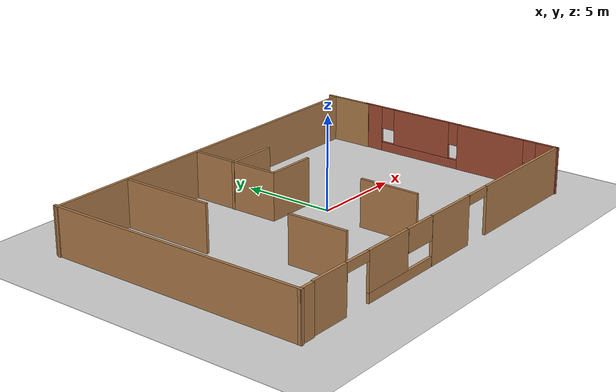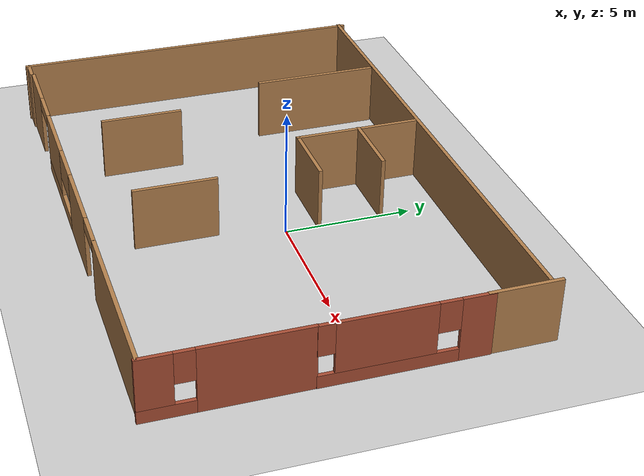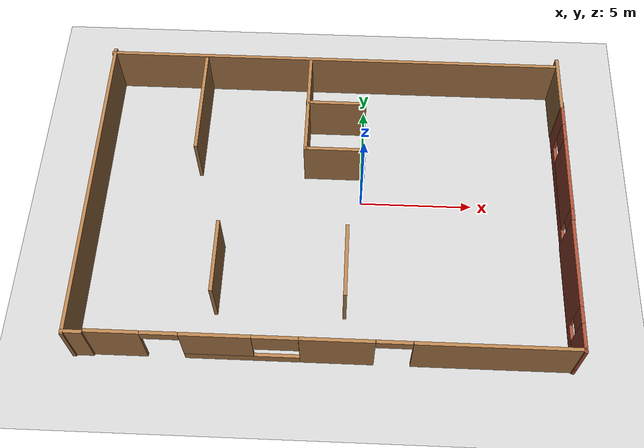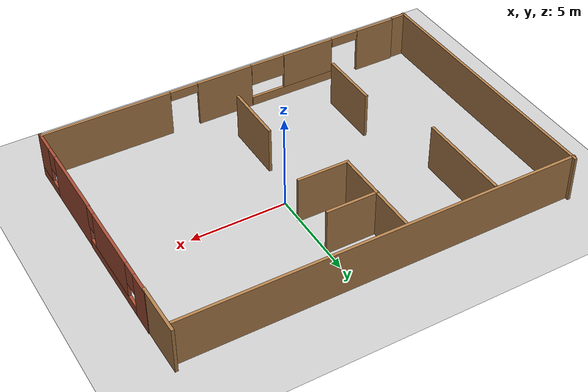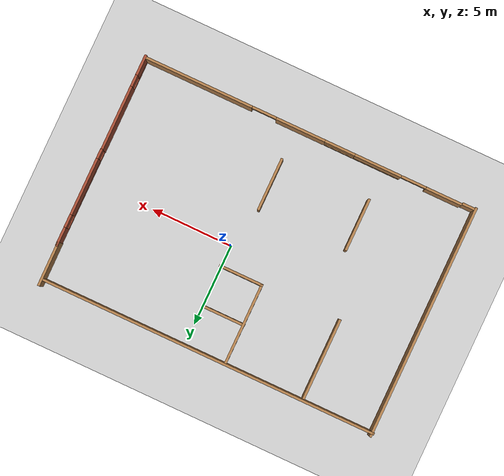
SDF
<sdf version="1.7">
 <world name="default">
  <model name="ground_plane">
   <static>1</static>
   <link name="link">
    <collision name="collision">
     <geometry><plane><normal>0 0 1</normal><size>100 100</size></plane></geometry>
     <surface><friction><ode><mu>100</mu><mu2>50</mu2></ode></friction></surface>
    </collision>
    <visual name="visual">
     <cast_shadows>0</cast_shadows>
     <geometry><plane><normal>0 0 1</normal><size>100 100</size></plane></geometry>
     <material>
      <script><uri>file://media/materials/scripts/gazebo.material</uri><name>Gazebo/Grey</name></script>
     </material>
    </visual>
   </link>
  </model>
  <model name="cafe_ground">
   <link name="Wall_14">
    <pose>10.0491 -5.05379 0 0 0 -1.56964</pose>
    <visual name="Wall_14_Visual_3">
     <pose>1.36231 0 1.9 0 -0 0</pose>
     <geometry><box><size>0.717555 0.15 1.2</size></box></geometry>
     <material>
      <script><uri>file://media/materials/scripts/gazebo.material</uri><name>Gazebo/Bricks</name></script>
      <ambient>1 1 1 1</ambient>
      <shader type="pixel"/>
     </material>
     <meta><layer>0</layer></meta>
    </visual>
    <visual name="Wall_14_Visual_1">
     <pose>1.99308 0 0.25 0 -0 0</pose>
     <geometry><box><size>1.97911 0.15 0.5</size></box></geometry>
     <material>
      <script><uri>file://media/materials/scripts/gazebo.material</uri><name>Gazebo/Bricks</name></script>
      <ambient>1 1 1 1</ambient>
      <shader type="pixel"/>
     </material>
     <meta><layer>0</layer></meta>
    </visual>
    <visual name="Wall_14_Visual_2">
     <pose>2.35186 0 1.5 0 -0 0</pose>
     <geometry><box><size>1.26156 0.15 2</size></box></geometry>
     <material>
      <script><uri>file://media/materials/scripts/gazebo.material</uri><name>Gazebo/Bricks</name></script>
      <ambient>1 1 1 1</ambient>
      <shader type="pixel"/>
     </material>
     <meta><layer>0</layer></meta>
    </visual>
    <visual name="Wall_14_Visual_0">
     <pose>-0.989557 0 1.25 0 -0 0</pose>
     <geometry><box><size>3.98617 0.15 2.5</size></box></geometry>
     <material>
      <script><uri>file://media/materials/scripts/gazebo.material</uri><name>Gazebo/Bricks</name></script>
      <ambient>1 1 1 1</ambient>
      <shader type="pixel"/>
     </material>
     <meta><layer>0</layer></meta>
    </visual>
    <collision name="Wall_14_Collision_2">
     <pose>2.35186 0 1.5 0 -0 0</pose>
     <geometry><box><size>1.26156 0.15 2</size></box></geometry>
     <surface>
      <friction>
       <ode><mu>1</mu><mu2>1</mu2><fdir1>0 0 0</fdir1><slip1>0</slip1><slip2>0</slip2></ode>
       <torsional>
        <coefficient>1</coefficient>
        <patch_radius>0</patch_radius>
        <surface_radius>0</surface_radius>
        <use_patch_radius>1</use_patch_radius>
        <ode><slip>0</slip></ode>
       </torsional>
      </friction>
      <bounce><restitution_coefficient>0</restitution_coefficient><threshold>1e+06</threshold></bounce>
      <contact>
       <collide_without_contact>0</collide_without_contact>
       <collide_without_contact_bitmask>1</collide_without_contact_bitmask>
       <collide_bitmask>1</collide_bitmask>
       <ode>
        <soft_cfm>0</soft_cfm>
        <soft_erp>0.2</soft_erp>
        <kp>1e+13</kp>
        <kd>1</kd>
        <max_vel>0.01</max_vel>
        <min_depth>0</min_depth>
       </ode>
       <bullet>
        <split_impulse>1</split_impulse>
        <split_impulse_penetration_threshold>-0.01</split_impulse_penetration_threshold>
        <soft_cfm>0</soft_cfm>
        <soft_erp>0.2</soft_erp>
        <kp>1e+13</kp>
        <kd>1</kd>
       </bullet>
      </contact>
     </surface>
    </collision>
    <collision name="Wall_14_Collision_1">
     <pose>1.99308 0 0.25 0 -0 0</pose>
     <geometry><box><size>1.97911 0.15 0.5</size></box></geometry>
     <surface>
      <friction>
       <ode><mu>1</mu><mu2>1</mu2><fdir1>0 0 0</fdir1><slip1>0</slip1><slip2>0</slip2></ode>
       <torsional>
        <coefficient>1</coefficient>
        <patch_radius>0</patch_radius>
        <surface_radius>0</surface_radius>
        <use_patch_radius>1</use_patch_radius>
        <ode><slip>0</slip></ode>
       </torsional>
      </friction>
      <bounce><restitution_coefficient>0</restitution_coefficient><threshold>1e+06</threshold></bounce>
      <contact>
       <collide_without_contact>0</collide_without_contact>
       <collide_without_contact_bitmask>1</collide_without_contact_bitmask>
       <collide_bitmask>1</collide_bitmask>
       <ode>
        <soft_cfm>0</soft_cfm>
        <soft_erp>0.2</soft_erp>
        <kp>1e+13</kp>
        <kd>1</kd>
        <max_vel>0.01</max_vel>
        <min_depth>0</min_depth>
       </ode>
       <bullet>
        <split_impulse>1</split_impulse>
        <split_impulse_penetration_threshold>-0.01</split_impulse_penetration_threshold>
        <soft_cfm>0</soft_cfm>
        <soft_erp>0.2</soft_erp>
        <kp>1e+13</kp>
        <kd>1</kd>
       </bullet>
      </contact>
     </surface>
    </collision>
    <collision name="Wall_14_Collision_0">
     <pose>-0.989557 0 1.25 0 -0 0</pose>
     <geometry><box><size>3.98617 0.15 2.5</size></box></geometry>
     <surface>
      <friction>
       <ode><mu>1</mu><mu2>1</mu2><fdir1>0 0 0</fdir1><slip1>0</slip1><slip2>0</slip2></ode>
       <torsional>
        <coefficient>1</coefficient>
        <patch_radius>0</patch_radius>
        <surface_radius>0</surface_radius>
        <use_patch_radius>1</use_patch_radius>
        <ode><slip>0</slip></ode>
       </torsional>
      </friction>
      <bounce><restitution_coefficient>0</restitution_coefficient><threshold>1e+06</threshold></bounce>
      <contact>
       <collide_without_contact>0</collide_without_contact>
       <collide_without_contact_bitmask>1</collide_without_contact_bitmask>
       <collide_bitmask>1</collide_bitmask>
       <ode>
        <soft_cfm>0</soft_cfm>
        <soft_erp>0.2</soft_erp>
        <kp>1e+13</kp>
        <kd>1</kd>
        <max_vel>0.01</max_vel>
        <min_depth>0</min_depth>
       </ode>
       <bullet>
        <split_impulse>1</split_impulse>
        <split_impulse_penetration_threshold>-0.01</split_impulse_penetration_threshold>
        <soft_cfm>0</soft_cfm>
        <soft_erp>0.2</soft_erp>
        <kp>1e+13</kp>
        <kd>1</kd>
       </bullet>
      </contact>
     </surface>
    </collision>
    <collision name="Wall_14_Collision_3">
     <pose>1.36231 0 1.9 0 -0 0</pose>
     <geometry><box><size>0.717555 0.15 1.2</size></box></geometry>
     <surface>
      <friction>
       <ode><mu>1</mu><mu2>1</mu2><fdir1>0 0 0</fdir1><slip1>0</slip1><slip2>0</slip2></ode>
       <torsional>
        <coefficient>1</coefficient>
        <patch_radius>0</patch_radius>
        <surface_radius>0</surface_radius>
        <use_patch_radius>1</use_patch_radius>
        <ode><slip>0</slip></ode>
       </torsional>
      </friction>
      <bounce><restitution_coefficient>0</restitution_coefficient><threshold>1e+06</threshold></bounce>
      <contact>
       <collide_without_contact>0</collide_without_contact>
       <collide_without_contact_bitmask>1</collide_without_contact_bitmask>
       <collide_bitmask>1</collide_bitmask>
       <ode>
        <soft_cfm>0</soft_cfm>
        <soft_erp>0.2</soft_erp>
        <kp>1e+13</kp>
        <kd>1</kd>
        <max_vel>0.01</max_vel>
        <min_depth>0</min_depth>
       </ode>
       <bullet>
        <split_impulse>1</split_impulse>
        <split_impulse_penetration_threshold>-0.01</split_impulse_penetration_threshold>
        <soft_cfm>0</soft_cfm>
        <soft_erp>0.2</soft_erp>
        <kp>1e+13</kp>
        <kd>1</kd>
       </bullet>
      </contact>
     </surface>
    </collision>
   </link>
   <link name="Wall_15">
    <pose>0.085099 -7.90222 0 0 -0 3.14159</pose>
    <inertial>
     <inertia><ixx>0</ixx><ixy>0</ixy><ixz>0</ixz><iyy>0</iyy><iyz>0</iyz><izz>0</izz></inertia>
     <mass>0</mass>
    </inertial>
    <visual name="Wall_15_Visual_4">
     <pose>4.72994 0 1.5 0 -0 0</pose>
     <geometry><box><size>2.90961 0.15 2</size></box></geometry>
     <material>
      <script><uri>file://media/materials/scripts/gazebo.material</uri><name>Gazebo/Wood</name></script>
      <ambient>1 1 1 1</ambient>
      <shader type="pixel"/>
     </material>
     <meta><layer>0</layer></meta>
    </visual>
    <visual name="Wall_15_Visual_7">
     <pose>6.9672 0 2.25 0 -0 0</pose>
     <geometry><box><size>1.55048 0.15 0.5</size></box></geometry>
     <material>
      <script><uri>file://media/materials/scripts/gazebo.material</uri><name>Gazebo/Wood</name></script>
      <ambient>1 1 1 1</ambient>
      <shader type="pixel"/>
     </material>
     <meta><layer>0</layer></meta>
    </visual>
    <visual name="Wall_15_Visual_3">
     <pose>3.7864 0 0.25 0 -0 0</pose>
     <geometry><box><size>4.79064 0.15 0.5</size></box></geometry>
     <material>
      <script><uri>file://media/materials/scripts/gazebo.material</uri><name>Gazebo/Wood</name></script>
      <ambient>1 1 1 1</ambient>
      <shader type="pixel"/>
     </material>
     <meta><layer>0</layer></meta>
    </visual>
    <visual name="Wall_15_Visual_0">
     <pose>-6.59523 0 1.25 0 -0 0</pose>
     <geometry><box><size>6.7876 0.15 2.5</size></box></geometry>
     <material>
      <script><uri>file://media/materials/scripts/gazebo.material</uri><name>Gazebo/Wood</name></script>
      <ambient>1 1 1 1</ambient>
      <shader type="pixel"/>
     </material>
     <meta><layer>0</layer></meta>
    </visual>
    <visual name="Wall_15_Visual_5">
     <pose>2.32688 0 1.9 0 -0 0</pose>
     <geometry><box><size>1.88101 0.15 1.2</size></box></geometry>
     <material>
      <script><uri>file://media/materials/scripts/gazebo.material</uri><name>Gazebo/Wood</name></script>
      <ambient>1 1 1 1</ambient>
      <shader type="pixel"/>
     </material>
     <meta><layer>0</layer></meta>
    </visual>
    <visual name="Wall_15_Visual_2">
     <pose>8.87248 0 1.25 0 -0 0</pose>
     <geometry><box><size>2.24777 0.15 2.5</size></box></geometry>
     <material>
      <script><uri>file://media/materials/scripts/gazebo.material</uri><name>Gazebo/Wood</name></script>
      <ambient>1 1 1 1</ambient>
      <shader type="pixel"/>
     </material>
     <meta><layer>0</layer></meta>
    </visual>
    <visual name="Wall_15_Visual_1">
     <pose>-0.152511 0 1.25 0 -0 0</pose>
     <geometry><box><size>3.0618 0.15 2.5</size></box></geometry>
     <material>
      <script><uri>file://media/materials/scripts/gazebo.material</uri><name>Gazebo/Wood</name></script>
      <ambient>1 1 1 1</ambient>
      <shader type="pixel"/>
     </material>
     <meta><layer>0</layer></meta>
    </visual>
    <visual name="Wall_15_Visual_6">
     <pose>-2.43941 0 2.25 0 -0 0</pose>
     <geometry><box><size>1.49726 0.15 0.5</size></box></geometry>
     <material>
      <script><uri>file://media/materials/scripts/gazebo.material</uri><name>Gazebo/Wood</name></script>
      <ambient>1 1 1 1</ambient>
      <shader type="pixel"/>
     </material>
     <meta><layer>0</layer></meta>
    </visual>
    <collision name="Wall_15_Collision_6">
     <pose>-2.43941 0 2.25 0 -0 0</pose>
     <geometry><box><size>1.49726 0.15 0.5</size></box></geometry>
     <surface>
      <friction>
       <ode><mu>1</mu><mu2>1</mu2><fdir1>0 0 0</fdir1><slip1>0</slip1><slip2>0</slip2></ode>
       <torsional>
        <coefficient>1</coefficient>
        <patch_radius>0</patch_radius>
        <surface_radius>0</surface_radius>
        <use_patch_radius>1</use_patch_radius>
        <ode><slip>0</slip></ode>
       </torsional>
      </friction>
      <bounce><restitution_coefficient>0</restitution_coefficient><threshold>1e+06</threshold></bounce>
      <contact>
       <collide_without_contact>0</collide_without_contact>
       <collide_without_contact_bitmask>1</collide_without_contact_bitmask>
       <collide_bitmask>1</collide_bitmask>
       <ode>
        <soft_cfm>0</soft_cfm>
        <soft_erp>0.2</soft_erp>
        <kp>1e+13</kp>
        <kd>1</kd>
        <max_vel>0.01</max_vel>
        <min_depth>0</min_depth>
       </ode>
       <bullet>
        <split_impulse>1</split_impulse>
        <split_impulse_penetration_threshold>-0.01</split_impulse_penetration_threshold>
        <soft_cfm>0</soft_cfm>
        <soft_erp>0.2</soft_erp>
        <kp>1e+13</kp>
        <kd>1</kd>
       </bullet>
      </contact>
     </surface>
    </collision>
    <collision name="Wall_15_Collision_4">
     <pose>4.72994 0 1.5 0 -0 0</pose>
     <geometry><box><size>2.90961 0.15 2</size></box></geometry>
     <surface>
      <friction>
       <ode><mu>1</mu><mu2>1</mu2><fdir1>0 0 0</fdir1><slip1>0</slip1><slip2>0</slip2></ode>
       <torsional>
        <coefficient>1</coefficient>
        <patch_radius>0</patch_radius>
        <surface_radius>0</surface_radius>
        <use_patch_radius>1</use_patch_radius>
        <ode><slip>0</slip></ode>
       </torsional>
      </friction>
      <bounce><restitution_coefficient>0</restitution_coefficient><threshold>1e+06</threshold></bounce>
      <contact>
       <collide_without_contact>0</collide_without_contact>
       <collide_without_contact_bitmask>1</collide_without_contact_bitmask>
       <collide_bitmask>1</collide_bitmask>
       <ode>
        <soft_cfm>0</soft_cfm>
        <soft_erp>0.2</soft_erp>
        <kp>1e+13</kp>
        <kd>1</kd>
        <max_vel>0.01</max_vel>
        <min_depth>0</min_depth>
       </ode>
       <bullet>
        <split_impulse>1</split_impulse>
        <split_impulse_penetration_threshold>-0.01</split_impulse_penetration_threshold>
        <soft_cfm>0</soft_cfm>
        <soft_erp>0.2</soft_erp>
        <kp>1e+13</kp>
        <kd>1</kd>
       </bullet>
      </contact>
     </surface>
    </collision>
    <collision name="Wall_15_Collision_0">
     <pose>-6.59523 0 1.25 0 -0 0</pose>
     <geometry><box><size>6.7876 0.15 2.5</size></box></geometry>
     <surface>
      <friction>
       <ode><mu>1</mu><mu2>1</mu2><fdir1>0 0 0</fdir1><slip1>0</slip1><slip2>0</slip2></ode>
       <torsional>
        <coefficient>1</coefficient>
        <patch_radius>0</patch_radius>
        <surface_radius>0</surface_radius>
        <use_patch_radius>1</use_patch_radius>
        <ode><slip>0</slip></ode>
       </torsional>
      </friction>
      <bounce><restitution_coefficient>0</restitution_coefficient><threshold>1e+06</threshold></bounce>
      <contact>
       <collide_without_contact>0</collide_without_contact>
       <collide_without_contact_bitmask>1</collide_without_contact_bitmask>
       <collide_bitmask>1</collide_bitmask>
       <ode>
        <soft_cfm>0</soft_cfm>
        <soft_erp>0.2</soft_erp>
        <kp>1e+13</kp>
        <kd>1</kd>
        <max_vel>0.01</max_vel>
        <min_depth>0</min_depth>
       </ode>
       <bullet>
        <split_impulse>1</split_impulse>
        <split_impulse_penetration_threshold>-0.01</split_impulse_penetration_threshold>
        <soft_cfm>0</soft_cfm>
        <soft_erp>0.2</soft_erp>
        <kp>1e+13</kp>
        <kd>1</kd>
       </bullet>
      </contact>
     </surface>
    </collision>
    <collision name="Wall_15_Collision_7">
     <pose>6.9672 0 2.25 0 -0 0</pose>
     <geometry><box><size>1.55048 0.15 0.5</size></box></geometry>
     <surface>
      <friction>
       <ode><mu>1</mu><mu2>1</mu2><fdir1>0 0 0</fdir1><slip1>0</slip1><slip2>0</slip2></ode>
       <torsional>
        <coefficient>1</coefficient>
        <patch_radius>0</patch_radius>
        <surface_radius>0</surface_radius>
        <use_patch_radius>1</use_patch_radius>
        <ode><slip>0</slip></ode>
       </torsional>
      </friction>
      <bounce><restitution_coefficient>0</restitution_coefficient><threshold>1e+06</threshold></bounce>
      <contact>
       <collide_without_contact>0</collide_without_contact>
       <collide_without_contact_bitmask>1</collide_without_contact_bitmask>
       <collide_bitmask>1</collide_bitmask>
       <ode>
        <soft_cfm>0</soft_cfm>
        <soft_erp>0.2</soft_erp>
        <kp>1e+13</kp>
        <kd>1</kd>
        <max_vel>0.01</max_vel>
        <min_depth>0</min_depth>
       </ode>
       <bullet>
        <split_impulse>1</split_impulse>
        <split_impulse_penetration_threshold>-0.01</split_impulse_penetration_threshold>
        <soft_cfm>0</soft_cfm>
        <soft_erp>0.2</soft_erp>
        <kp>1e+13</kp>
        <kd>1</kd>
       </bullet>
      </contact>
     </surface>
    </collision>
    <collision name="Wall_15_Collision_1">
     <pose>-0.152511 0 1.25 0 -0 0</pose>
     <geometry><box><size>3.0618 0.15 2.5</size></box></geometry>
     <surface>
      <friction>
       <ode><mu>1</mu><mu2>1</mu2><fdir1>0 0 0</fdir1><slip1>0</slip1><slip2>0</slip2></ode>
       <torsional>
        <coefficient>1</coefficient>
        <patch_radius>0</patch_radius>
        <surface_radius>0</surface_radius>
        <use_patch_radius>1</use_patch_radius>
        <ode><slip>0</slip></ode>
       </torsional>
      </friction>
      <bounce><restitution_coefficient>0</restitution_coefficient><threshold>1e+06</threshold></bounce>
      <contact>
       <collide_without_contact>0</collide_without_contact>
       <collide_without_contact_bitmask>1</collide_without_contact_bitmask>
       <collide_bitmask>1</collide_bitmask>
       <ode>
        <soft_cfm>0</soft_cfm>
        <soft_erp>0.2</soft_erp>
        <kp>1e+13</kp>
        <kd>1</kd>
        <max_vel>0.01</max_vel>
        <min_depth>0</min_depth>
       </ode>
       <bullet>
        <split_impulse>1</split_impulse>
        <split_impulse_penetration_threshold>-0.01</split_impulse_penetration_threshold>
        <soft_cfm>0</soft_cfm>
        <soft_erp>0.2</soft_erp>
        <kp>1e+13</kp>
        <kd>1</kd>
       </bullet>
      </contact>
     </surface>
    </collision>
    <collision name="Wall_15_Collision_3">
     <pose>3.7864 0 0.25 0 -0 0</pose>
     <geometry><box><size>4.79064 0.15 0.5</size></box></geometry>
     <surface>
      <friction>
       <ode><mu>1</mu><mu2>1</mu2><fdir1>0 0 0</fdir1><slip1>0</slip1><slip2>0</slip2></ode>
       <torsional>
        <coefficient>1</coefficient>
        <patch_radius>0</patch_radius>
        <surface_radius>0</surface_radius>
        <use_patch_radius>1</use_patch_radius>
        <ode><slip>0</slip></ode>
       </torsional>
      </friction>
      <bounce><restitution_coefficient>0</restitution_coefficient><threshold>1e+06</threshold></bounce>
      <contact>
       <collide_without_contact>0</collide_without_contact>
       <collide_without_contact_bitmask>1</collide_without_contact_bitmask>
       <collide_bitmask>1</collide_bitmask>
       <ode>
        <soft_cfm>0</soft_cfm>
        <soft_erp>0.2</soft_erp>
        <kp>1e+13</kp>
        <kd>1</kd>
        <max_vel>0.01</max_vel>
        <min_depth>0</min_depth>
       </ode>
       <bullet>
        <split_impulse>1</split_impulse>
        <split_impulse_penetration_threshold>-0.01</split_impulse_penetration_threshold>
        <soft_cfm>0</soft_cfm>
        <soft_erp>0.2</soft_erp>
        <kp>1e+13</kp>
        <kd>1</kd>
       </bullet>
      </contact>
     </surface>
    </collision>
    <collision name="Wall_15_Collision_5">
     <pose>2.32688 0 1.9 0 -0 0</pose>
     <geometry><box><size>1.88101 0.15 1.2</size></box></geometry>
     <surface>
      <friction>
       <ode><mu>1</mu><mu2>1</mu2><fdir1>0 0 0</fdir1><slip1>0</slip1><slip2>0</slip2></ode>
       <torsional>
        <coefficient>1</coefficient>
        <patch_radius>0</patch_radius>
        <surface_radius>0</surface_radius>
        <use_patch_radius>1</use_patch_radius>
        <ode><slip>0</slip></ode>
       </torsional>
      </friction>
      <bounce><restitution_coefficient>0</restitution_coefficient><threshold>1e+06</threshold></bounce>
      <contact>
       <collide_without_contact>0</collide_without_contact>
       <collide_without_contact_bitmask>1</collide_without_contact_bitmask>
       <collide_bitmask>1</collide_bitmask>
       <ode>
        <soft_cfm>0</soft_cfm>
        <soft_erp>0.2</soft_erp>
        <kp>1e+13</kp>
        <kd>1</kd>
        <max_vel>0.01</max_vel>
        <min_depth>0</min_depth>
       </ode>
       <bullet>
        <split_impulse>1</split_impulse>
        <split_impulse_penetration_threshold>-0.01</split_impulse_penetration_threshold>
        <soft_cfm>0</soft_cfm>
        <soft_erp>0.2</soft_erp>
        <kp>1e+13</kp>
        <kd>1</kd>
       </bullet>
      </contact>
     </surface>
    </collision>
    <collision name="Wall_15_Collision_2">
     <pose>8.87248 0 1.25 0 -0 0</pose>
     <geometry><box><size>2.24777 0.15 2.5</size></box></geometry>
     <surface>
      <friction>
       <ode><mu>1</mu><mu2>1</mu2><fdir1>0 0 0</fdir1><slip1>0</slip1><slip2>0</slip2></ode>
       <torsional>
        <coefficient>1</coefficient>
        <patch_radius>0</patch_radius>
        <surface_radius>0</surface_radius>
        <use_patch_radius>1</use_patch_radius>
        <ode><slip>0</slip></ode>
       </torsional>
      </friction>
      <bounce><restitution_coefficient>0</restitution_coefficient><threshold>1e+06</threshold></bounce>
      <contact>
       <collide_without_contact>0</collide_without_contact>
       <collide_without_contact_bitmask>1</collide_without_contact_bitmask>
       <collide_bitmask>1</collide_bitmask>
       <ode>
        <soft_cfm>0</soft_cfm>
        <soft_erp>0.2</soft_erp>
        <kp>1e+13</kp>
        <kd>1</kd>
        <max_vel>0.01</max_vel>
        <min_depth>0</min_depth>
       </ode>
       <bullet>
        <split_impulse>1</split_impulse>
        <split_impulse_penetration_threshold>-0.01</split_impulse_penetration_threshold>
        <soft_cfm>0</soft_cfm>
        <soft_erp>0.2</soft_erp>
        <kp>1e+13</kp>
        <kd>1</kd>
       </bullet>
      </contact>
     </surface>
    </collision>
   </link>
   <link name="Wall_16">
    <pose>-10.7518 -0.894596 0 0 -0 1.57137</pose>
    <inertial>
     <inertia><ixx>0</ixx><ixy>0</ixy><ixz>0</ixz><iyy>0</iyy><iyz>0</iyz><izz>0</izz></inertia>
     <mass>0</mass>
    </inertial>
    <visual name="Wall_16_Visual">
     <pose>0 0 1.25 0 -0 0</pose>
     <geometry><box><size>14.4138 0.15 2.5</size></box></geometry>
     <material>
      <script><uri>file://media/materials/scripts/gazebo.material</uri><name>Gazebo/Wood</name></script>
      <ambient>1 1 1 1</ambient>
      <shader type="pixel"/>
     </material>
     <meta><layer>0</layer></meta>
    </visual>
    <collision name="Wall_16_Collision">
     <pose>0 0 1.25 0 -0 0</pose>
     <geometry><box><size>14.4138 0.15 2.5</size></box></geometry>
     <surface>
      <friction>
       <ode><mu>1</mu><mu2>1</mu2><fdir1>0 0 0</fdir1><slip1>0</slip1><slip2>0</slip2></ode>
       <torsional>
        <coefficient>1</coefficient>
        <patch_radius>0</patch_radius>
        <surface_radius>0</surface_radius>
        <use_patch_radius>1</use_patch_radius>
        <ode><slip>0</slip></ode>
       </torsional>
      </friction>
      <bounce><restitution_coefficient>0</restitution_coefficient><threshold>1e+06</threshold></bounce>
      <contact>
       <collide_without_contact>0</collide_without_contact>
       <collide_without_contact_bitmask>1</collide_without_contact_bitmask>
       <collide_bitmask>1</collide_bitmask>
       <ode>
        <soft_cfm>0</soft_cfm>
        <soft_erp>0.2</soft_erp>
        <kp>1e+13</kp>
        <kd>1</kd>
        <max_vel>0.01</max_vel>
        <min_depth>0</min_depth>
       </ode>
       <bullet>
        <split_impulse>1</split_impulse>
        <split_impulse_penetration_threshold>-0.01</split_impulse_penetration_threshold>
        <soft_cfm>0</soft_cfm>
        <soft_erp>0.2</soft_erp>
        <kp>1e+13</kp>
        <kd>1</kd>
       </bullet>
      </contact>
     </surface>
    </collision>
   </link>
   <link name="Wall_17">
    <pose>-0.473281 6.07652 0 0 -0 0</pose>
    <inertial>
     <inertia><ixx>0</ixx><ixy>0</ixy><ixz>0</ixz><iyy>0</iyy><iyz>0</iyz><izz>0</izz></inertia>
     <mass>0</mass>
    </inertial>
    <visual name="Wall_17_Visual">
     <pose>0 0 1.25 0 -0 0</pose>
     <geometry><box><size>20.8341 0.15 2.5</size></box></geometry>
     <material>
      <script><uri>file://media/materials/scripts/gazebo.material</uri><name>Gazebo/Wood</name></script>
      <ambient>1 1 1 1</ambient>
      <shader type="pixel"/>
     </material>
     <meta><layer>0</layer></meta>
    </visual>
    <collision name="Wall_17_Collision">
     <pose>0 0 1.25 0 -0 0</pose>
     <geometry><box><size>20.8341 0.15 2.5</size></box></geometry>
     <surface>
      <friction>
       <ode><mu>1</mu><mu2>1</mu2><fdir1>0 0 0</fdir1><slip1>0</slip1><slip2>0</slip2></ode>
       <torsional>
        <coefficient>1</coefficient>
        <patch_radius>0</patch_radius>
        <surface_radius>0</surface_radius>
        <use_patch_radius>1</use_patch_radius>
        <ode><slip>0</slip></ode>
       </torsional>
      </friction>
      <bounce><restitution_coefficient>0</restitution_coefficient><threshold>1e+06</threshold></bounce>
      <contact>
       <collide_without_contact>0</collide_without_contact>
       <collide_without_contact_bitmask>1</collide_without_contact_bitmask>
       <collide_bitmask>1</collide_bitmask>
       <ode>
        <soft_cfm>0</soft_cfm>
        <soft_erp>0.2</soft_erp>
        <kp>1e+13</kp>
        <kd>1</kd>
        <max_vel>0.01</max_vel>
        <min_depth>0</min_depth>
       </ode>
       <bullet>
        <split_impulse>1</split_impulse>
        <split_impulse_penetration_threshold>-0.01</split_impulse_penetration_threshold>
        <soft_cfm>0</soft_cfm>
        <soft_erp>0.2</soft_erp>
        <kp>1e+13</kp>
        <kd>1</kd>
       </bullet>
      </contact>
     </surface>
    </collision>
   </link>
   <link name="Wall_18">
    <pose>10.0639 0.965223 0 0 0 -1.5708</pose>
    <visual name="Wall_18_Visual_0">
     <pose>-2.47664 0 1.25 0 -0 0</pose>
     <geometry><box><size>1.19672 0.15 2.5</size></box></geometry>
     <material>
      <script><uri>file://media/materials/scripts/gazebo.material</uri><name>Gazebo/Bricks</name></script>
      <ambient>1 1 1 1</ambient>
      <shader type="pixel"/>
     </material>
     <meta><layer>0</layer></meta>
    </visual>
    <visual name="Wall_18_Visual_2">
     <pose>0.693485 0 1.5 0 -0 0</pose>
     <geometry><box><size>3.54353 0.15 2</size></box></geometry>
     <material>
      <script><uri>file://media/materials/scripts/gazebo.material</uri><name>Gazebo/Bricks</name></script>
      <ambient>1 1 1 1</ambient>
      <shader type="pixel"/>
     </material>
     <meta><layer>0</layer></meta>
    </visual>
    <visual name="Wall_18_Visual_6">
     <pose>2.77013 0 1.9 0 -0 0</pose>
     <geometry><box><size>0.60975 0.15 1.2</size></box></geometry>
     <material>
      <script><uri>file://media/materials/scripts/gazebo.material</uri><name>Gazebo/Bricks</name></script>
      <ambient>1 1 1 1</ambient>
      <shader type="pixel"/>
     </material>
     <meta><layer>0</layer></meta>
    </visual>
    <visual name="Wall_18_Visual_1">
     <pose>0.59836 0 0.25 0 -0 0</pose>
     <geometry><box><size>4.95328 0.15 0.5</size></box></geometry>
     <material>
      <script><uri>file://media/materials/scripts/gazebo.material</uri><name>Gazebo/Bricks</name></script>
      <ambient>1 1 1 1</ambient>
      <shader type="pixel"/>
     </material>
     <meta><layer>0</layer></meta>
    </visual>
    <visual name="Wall_18_Visual_5">
     <pose>2.77013 0 1.9 0 -0 0</pose>
     <geometry><box><size>0.60975 0.15 1.2</size></box></geometry>
     <material>
      <script><uri>file://media/materials/scripts/gazebo.material</uri><name>Gazebo/Bricks</name></script>
      <ambient>1 1 1 1</ambient>
      <shader type="pixel"/>
     </material>
     <meta><layer>0</layer></meta>
    </visual>
    <visual name="Wall_18_Visual_4">
     <pose>-1.47828 0 1.9 0 -0 0</pose>
     <geometry><box><size>0.8 0.15 1.2</size></box></geometry>
     <material>
      <script><uri>file://media/materials/scripts/gazebo.material</uri><name>Gazebo/Bricks</name></script>
      <ambient>1 1 1 1</ambient>
      <shader type="pixel"/>
     </material>
     <meta><layer>0</layer></meta>
    </visual>
    <visual name="Wall_18_Visual_3">
     <pose>0.693485 0 1.5 0 -0 0</pose>
     <geometry><box><size>3.54353 0.15 2</size></box></geometry>
     <material>
      <script><uri>file://media/materials/scripts/gazebo.material</uri><name>Gazebo/Bricks</name></script>
      <ambient>1 1 1 1</ambient>
      <shader type="pixel"/>
     </material>
     <meta><layer>0</layer></meta>
    </visual>
    <collision name="Wall_18_Collision_4">
     <pose>-1.47828 0 1.9 0 -0 0</pose>
     <geometry><box><size>0.8 0.15 1.2</size></box></geometry>
     <surface>
      <friction>
       <ode><mu>1</mu><mu2>1</mu2><fdir1>0 0 0</fdir1><slip1>0</slip1><slip2>0</slip2></ode>
       <torsional>
        <coefficient>1</coefficient>
        <patch_radius>0</patch_radius>
        <surface_radius>0</surface_radius>
        <use_patch_radius>1</use_patch_radius>
        <ode><slip>0</slip></ode>
       </torsional>
      </friction>
      <bounce><restitution_coefficient>0</restitution_coefficient><threshold>1e+06</threshold></bounce>
      <contact>
       <collide_without_contact>0</collide_without_contact>
       <collide_without_contact_bitmask>1</collide_without_contact_bitmask>
       <collide_bitmask>1</collide_bitmask>
       <ode>
        <soft_cfm>0</soft_cfm>
        <soft_erp>0.2</soft_erp>
        <kp>1e+13</kp>
        <kd>1</kd>
        <max_vel>0.01</max_vel>
        <min_depth>0</min_depth>
       </ode>
       <bullet>
        <split_impulse>1</split_impulse>
        <split_impulse_penetration_threshold>-0.01</split_impulse_penetration_threshold>
        <soft_cfm>0</soft_cfm>
        <soft_erp>0.2</soft_erp>
        <kp>1e+13</kp>
        <kd>1</kd>
       </bullet>
      </contact>
     </surface>
    </collision>
    <collision name="Wall_18_Collision_3">
     <pose>0.693485 0 1.5 0 -0 0</pose>
     <geometry><box><size>3.54353 0.15 2</size></box></geometry>
     <surface>
      <friction>
       <ode><mu>1</mu><mu2>1</mu2><fdir1>0 0 0</fdir1><slip1>0</slip1><slip2>0</slip2></ode>
       <torsional>
        <coefficient>1</coefficient>
        <patch_radius>0</patch_radius>
        <surface_radius>0</surface_radius>
        <use_patch_radius>1</use_patch_radius>
        <ode><slip>0</slip></ode>
       </torsional>
      </friction>
      <bounce><restitution_coefficient>0</restitution_coefficient><threshold>1e+06</threshold></bounce>
      <contact>
       <collide_without_contact>0</collide_without_contact>
       <collide_without_contact_bitmask>1</collide_without_contact_bitmask>
       <collide_bitmask>1</collide_bitmask>
       <ode>
        <soft_cfm>0</soft_cfm>
        <soft_erp>0.2</soft_erp>
        <kp>1e+13</kp>
        <kd>1</kd>
        <max_vel>0.01</max_vel>
        <min_depth>0</min_depth>
       </ode>
       <bullet>
        <split_impulse>1</split_impulse>
        <split_impulse_penetration_threshold>-0.01</split_impulse_penetration_threshold>
        <soft_cfm>0</soft_cfm>
        <soft_erp>0.2</soft_erp>
        <kp>1e+13</kp>
        <kd>1</kd>
       </bullet>
      </contact>
     </surface>
    </collision>
    <collision name="Wall_18_Collision_5">
     <pose>2.77013 0 1.9 0 -0 0</pose>
     <geometry><box><size>0.60975 0.15 1.2</size></box></geometry>
     <surface>
      <friction>
       <ode><mu>1</mu><mu2>1</mu2><fdir1>0 0 0</fdir1><slip1>0</slip1><slip2>0</slip2></ode>
       <torsional>
        <coefficient>1</coefficient>
        <patch_radius>0</patch_radius>
        <surface_radius>0</surface_radius>
        <use_patch_radius>1</use_patch_radius>
        <ode><slip>0</slip></ode>
       </torsional>
      </friction>
      <bounce><restitution_coefficient>0</restitution_coefficient><threshold>1e+06</threshold></bounce>
      <contact>
       <collide_without_contact>0</collide_without_contact>
       <collide_without_contact_bitmask>1</collide_without_contact_bitmask>
       <collide_bitmask>1</collide_bitmask>
       <ode>
        <soft_cfm>0</soft_cfm>
        <soft_erp>0.2</soft_erp>
        <kp>1e+13</kp>
        <kd>1</kd>
        <max_vel>0.01</max_vel>
        <min_depth>0</min_depth>
       </ode>
       <bullet>
        <split_impulse>1</split_impulse>
        <split_impulse_penetration_threshold>-0.01</split_impulse_penetration_threshold>
        <soft_cfm>0</soft_cfm>
        <soft_erp>0.2</soft_erp>
        <kp>1e+13</kp>
        <kd>1</kd>
       </bullet>
      </contact>
     </surface>
    </collision>
    <collision name="Wall_18_Collision_0">
     <pose>-2.47664 0 1.25 0 -0 0</pose>
     <geometry><box><size>1.19672 0.15 2.5</size></box></geometry>
     <surface>
      <friction>
       <ode><mu>1</mu><mu2>1</mu2><fdir1>0 0 0</fdir1><slip1>0</slip1><slip2>0</slip2></ode>
       <torsional>
        <coefficient>1</coefficient>
        <patch_radius>0</patch_radius>
        <surface_radius>0</surface_radius>
        <use_patch_radius>1</use_patch_radius>
        <ode><slip>0</slip></ode>
       </torsional>
      </friction>
      <bounce><restitution_coefficient>0</restitution_coefficient><threshold>1e+06</threshold></bounce>
      <contact>
       <collide_without_contact>0</collide_without_contact>
       <collide_without_contact_bitmask>1</collide_without_contact_bitmask>
       <collide_bitmask>1</collide_bitmask>
       <ode>
        <soft_cfm>0</soft_cfm>
        <soft_erp>0.2</soft_erp>
        <kp>1e+13</kp>
        <kd>1</kd>
        <max_vel>0.01</max_vel>
        <min_depth>0</min_depth>
       </ode>
       <bullet>
        <split_impulse>1</split_impulse>
        <split_impulse_penetration_threshold>-0.01</split_impulse_penetration_threshold>
        <soft_cfm>0</soft_cfm>
        <soft_erp>0.2</soft_erp>
        <kp>1e+13</kp>
        <kd>1</kd>
       </bullet>
      </contact>
     </surface>
    </collision>
    <collision name="Wall_18_Collision_2">
     <pose>0.693485 0 1.5 0 -0 0</pose>
     <geometry><box><size>3.54353 0.15 2</size></box></geometry>
     <surface>
      <friction>
       <ode><mu>1</mu><mu2>1</mu2><fdir1>0 0 0</fdir1><slip1>0</slip1><slip2>0</slip2></ode>
       <torsional>
        <coefficient>1</coefficient>
        <patch_radius>0</patch_radius>
        <surface_radius>0</surface_radius>
        <use_patch_radius>1</use_patch_radius>
        <ode><slip>0</slip></ode>
       </torsional>
      </friction>
      <bounce><restitution_coefficient>0</restitution_coefficient><threshold>1e+06</threshold></bounce>
      <contact>
       <collide_without_contact>0</collide_without_contact>
       <collide_without_contact_bitmask>1</collide_without_contact_bitmask>
       <collide_bitmask>1</collide_bitmask>
       <ode>
        <soft_cfm>0</soft_cfm>
        <soft_erp>0.2</soft_erp>
        <kp>1e+13</kp>
        <kd>1</kd>
        <max_vel>0.01</max_vel>
        <min_depth>0</min_depth>
       </ode>
       <bullet>
        <split_impulse>1</split_impulse>
        <split_impulse_penetration_threshold>-0.01</split_impulse_penetration_threshold>
        <soft_cfm>0</soft_cfm>
        <soft_erp>0.2</soft_erp>
        <kp>1e+13</kp>
        <kd>1</kd>
       </bullet>
      </contact>
     </surface>
    </collision>
    <collision name="Wall_18_Collision_6">
     <pose>2.77013 0 1.9 0 -0 0</pose>
     <geometry><box><size>0.60975 0.15 1.2</size></box></geometry>
     <surface>
      <friction>
       <ode><mu>1</mu><mu2>1</mu2><fdir1>0 0 0</fdir1><slip1>0</slip1><slip2>0</slip2></ode>
       <torsional>
        <coefficient>1</coefficient>
        <patch_radius>0</patch_radius>
        <surface_radius>0</surface_radius>
        <use_patch_radius>1</use_patch_radius>
        <ode><slip>0</slip></ode>
       </torsional>
      </friction>
      <bounce><restitution_coefficient>0</restitution_coefficient><threshold>1e+06</threshold></bounce>
      <contact>
       <collide_without_contact>0</collide_without_contact>
       <collide_without_contact_bitmask>1</collide_without_contact_bitmask>
       <collide_bitmask>1</collide_bitmask>
       <ode>
        <soft_cfm>0</soft_cfm>
        <soft_erp>0.2</soft_erp>
        <kp>1e+13</kp>
        <kd>1</kd>
        <max_vel>0.01</max_vel>
        <min_depth>0</min_depth>
       </ode>
       <bullet>
        <split_impulse>1</split_impulse>
        <split_impulse_penetration_threshold>-0.01</split_impulse_penetration_threshold>
        <soft_cfm>0</soft_cfm>
        <soft_erp>0.2</soft_erp>
        <kp>1e+13</kp>
        <kd>1</kd>
       </bullet>
      </contact>
     </surface>
    </collision>
    <collision name="Wall_18_Collision_1">
     <pose>0.59836 0 0.25 0 -0 0</pose>
     <geometry><box><size>4.95328 0.15 0.5</size></box></geometry>
     <surface>
      <friction>
       <ode><mu>1</mu><mu2>1</mu2><fdir1>0 0 0</fdir1><slip1>0</slip1><slip2>0</slip2></ode>
       <torsional>
        <coefficient>1</coefficient>
        <patch_radius>0</patch_radius>
        <surface_radius>0</surface_radius>
        <use_patch_radius>1</use_patch_radius>
        <ode><slip>0</slip></ode>
       </torsional>
      </friction>
      <bounce><restitution_coefficient>0</restitution_coefficient><threshold>1e+06</threshold></bounce>
      <contact>
       <collide_without_contact>0</collide_without_contact>
       <collide_without_contact_bitmask>1</collide_without_contact_bitmask>
       <collide_bitmask>1</collide_bitmask>
       <ode>
        <soft_cfm>0</soft_cfm>
        <soft_erp>0.2</soft_erp>
        <kp>1e+13</kp>
        <kd>1</kd>
        <max_vel>0.01</max_vel>
        <min_depth>0</min_depth>
       </ode>
       <bullet>
        <split_impulse>1</split_impulse>
        <split_impulse_penetration_threshold>-0.01</split_impulse_penetration_threshold>
        <soft_cfm>0</soft_cfm>
        <soft_erp>0.2</soft_erp>
        <kp>1e+13</kp>
        <kd>1</kd>
       </bullet>
      </contact>
     </surface>
    </collision>
   </link>
   <link name="Wall_26">
    <pose>-6.3931 3.4684 0 0 0 -1.5708</pose>
    <visual name="Wall_26_Visual">
     <pose>0 0 1.25 0 -0 0</pose>
     <geometry><box><size>5 0.15 2.5</size></box></geometry>
     <material>
      <script><uri>file://media/materials/scripts/gazebo.material</uri><name>Gazebo/Wood</name></script>
      <ambient>1 1 1 1</ambient>
      <shader type="pixel"/>
     </material>
     <meta><layer>0</layer></meta>
    </visual>
    <collision name="Wall_26_Collision">
     <pose>0 0 1.25 0 -0 0</pose>
     <geometry><box><size>5 0.15 2.5</size></box></geometry>
     <surface>
      <friction>
       <ode><mu>1</mu><mu2>1</mu2><fdir1>0 0 0</fdir1><slip1>0</slip1><slip2>0</slip2></ode>
       <torsional>
        <coefficient>1</coefficient>
        <patch_radius>0</patch_radius>
        <surface_radius>0</surface_radius>
        <use_patch_radius>1</use_patch_radius>
        <ode><slip>0</slip></ode>
       </torsional>
      </friction>
      <bounce><restitution_coefficient>0</restitution_coefficient><threshold>1e+06</threshold></bounce>
      <contact>
       <collide_without_contact>0</collide_without_contact>
       <collide_without_contact_bitmask>1</collide_without_contact_bitmask>
       <collide_bitmask>1</collide_bitmask>
       <ode>
        <soft_cfm>0</soft_cfm>
        <soft_erp>0.2</soft_erp>
        <kp>1e+13</kp>
        <kd>1</kd>
        <max_vel>0.01</max_vel>
        <min_depth>0</min_depth>
       </ode>
       <bullet>
        <split_impulse>1</split_impulse>
        <split_impulse_penetration_threshold>-0.01</split_impulse_penetration_threshold>
        <soft_cfm>0</soft_cfm>
        <soft_erp>0.2</soft_erp>
        <kp>1e+13</kp>
        <kd>1</kd>
       </bullet>
      </contact>
     </surface>
    </collision>
   </link>
   <link name="Wall_39">
    <pose>-1.50748 3.51041 0 0 0 -1.5708</pose>
    <visual name="Wall_39_Visual">
     <pose>0 0 1.25 0 -0 0</pose>
     <geometry><box><size>5 0.15 2.5</size></box></geometry>
     <material>
      <script><uri>file://media/materials/scripts/gazebo.material</uri><name>Gazebo/Wood</name></script>
      <ambient>1 1 1 1</ambient>
      <shader type="pixel"/>
     </material>
     <meta><layer>0</layer></meta>
    </visual>
    <collision name="Wall_39_Collision">
     <pose>0 0 1.25 0 -0 0</pose>
     <geometry><box><size>5 0.15 2.5</size></box></geometry>
     <surface>
      <friction>
       <ode><mu>1</mu><mu2>1</mu2><fdir1>0 0 0</fdir1><slip1>0</slip1><slip2>0</slip2></ode>
       <torsional>
        <coefficient>1</coefficient>
        <patch_radius>0</patch_radius>
        <surface_radius>0</surface_radius>
        <use_patch_radius>1</use_patch_radius>
        <ode><slip>0</slip></ode>
       </torsional>
      </friction>
      <bounce><restitution_coefficient>0</restitution_coefficient><threshold>1e+06</threshold></bounce>
      <contact>
       <collide_without_contact>0</collide_without_contact>
       <collide_without_contact_bitmask>1</collide_without_contact_bitmask>
       <collide_bitmask>1</collide_bitmask>
       <ode>
        <soft_cfm>0</soft_cfm>
        <soft_erp>0.2</soft_erp>
        <kp>1e+13</kp>
        <kd>1</kd>
        <max_vel>0.01</max_vel>
        <min_depth>0</min_depth>
       </ode>
       <bullet>
        <split_impulse>1</split_impulse>
        <split_impulse_penetration_threshold>-0.01</split_impulse_penetration_threshold>
        <soft_cfm>0</soft_cfm>
        <soft_erp>0.2</soft_erp>
        <kp>1e+13</kp>
        <kd>1</kd>
       </bullet>
      </contact>
     </surface>
    </collision>
   </link>
   <link name="Wall_46">
    <pose>-5.0066 -4.35047 0 0 -0 1.5708</pose>
    <visual name="Wall_46_Visual">
     <pose>0 0 1.25 0 -0 0</pose>
     <geometry><box><size>3.25 0.15 2.5</size></box></geometry>
     <material>
      <script><uri>file://media/materials/scripts/gazebo.material</uri><name>Gazebo/Wood</name></script>
      <ambient>1 1 1 1</ambient>
      <shader type="pixel"/>
     </material>
     <meta><layer>0</layer></meta>
    </visual>
    <collision name="Wall_46_Collision">
     <pose>0 0 1.25 0 -0 0</pose>
     <geometry><box><size>3.25 0.15 2.5</size></box></geometry>
     <surface>
      <friction>
       <ode><mu>1</mu><mu2>1</mu2><fdir1>0 0 0</fdir1><slip1>0</slip1><slip2>0</slip2></ode>
       <torsional>
        <coefficient>1</coefficient>
        <patch_radius>0</patch_radius>
        <surface_radius>0</surface_radius>
        <use_patch_radius>1</use_patch_radius>
        <ode><slip>0</slip></ode>
       </torsional>
      </friction>
      <bounce><restitution_coefficient>0</restitution_coefficient><threshold>1e+06</threshold></bounce>
      <contact>
       <collide_without_contact>0</collide_without_contact>
       <collide_without_contact_bitmask>1</collide_without_contact_bitmask>
       <collide_bitmask>1</collide_bitmask>
       <ode>
        <soft_cfm>0</soft_cfm>
        <soft_erp>0.2</soft_erp>
        <kp>1e+13</kp>
        <kd>1</kd>
        <max_vel>0.01</max_vel>
        <min_depth>0</min_depth>
       </ode>
       <bullet>
        <split_impulse>1</split_impulse>
        <split_impulse_penetration_threshold>-0.01</split_impulse_penetration_threshold>
        <soft_cfm>0</soft_cfm>
        <soft_erp>0.2</soft_erp>
        <kp>1e+13</kp>
        <kd>1</kd>
       </bullet>
      </contact>
     </surface>
    </collision>
   </link>
   <link name="Wall_48">
    <pose>0.491486 -4.33151 0 0 -0 1.5708</pose>
    <visual name="Wall_48_Visual">
     <pose>0 0 1.25 0 -0 0</pose>
     <geometry><box><size>3.25 0.15 2.5</size></box></geometry>
     <material>
      <script><uri>file://media/materials/scripts/gazebo.material</uri><name>Gazebo/Wood</name></script>
      <ambient>1 1 1 1</ambient>
      <shader type="pixel"/>
     </material>
     <meta><layer>0</layer></meta>
    </visual>
    <collision name="Wall_48_Collision">
     <pose>0 0 1.25 0 -0 0</pose>
     <geometry><box><size>3.25 0.15 2.5</size></box></geometry>
     <surface>
      <friction>
       <ode><mu>1</mu><mu2>1</mu2><fdir1>0 0 0</fdir1><slip1>0</slip1><slip2>0</slip2></ode>
       <torsional>
        <coefficient>1</coefficient>
        <patch_radius>0</patch_radius>
        <surface_radius>0</surface_radius>
        <use_patch_radius>1</use_patch_radius>
        <ode><slip>0</slip></ode>
       </torsional>
      </friction>
      <bounce><restitution_coefficient>0</restitution_coefficient><threshold>1e+06</threshold></bounce>
      <contact>
       <collide_without_contact>0</collide_without_contact>
       <collide_without_contact_bitmask>1</collide_without_contact_bitmask>
       <collide_bitmask>1</collide_bitmask>
       <ode>
        <soft_cfm>0</soft_cfm>
        <soft_erp>0.2</soft_erp>
        <kp>1e+13</kp>
        <kd>1</kd>
        <max_vel>0.01</max_vel>
        <min_depth>0</min_depth>
       </ode>
       <bullet>
        <split_impulse>1</split_impulse>
        <split_impulse_penetration_threshold>-0.01</split_impulse_penetration_threshold>
        <soft_cfm>0</soft_cfm>
        <soft_erp>0.2</soft_erp>
        <kp>1e+13</kp>
        <kd>1</kd>
       </bullet>
      </contact>
     </surface>
    </collision>
   </link>
   <link name="Wall_65">
    <pose>-0.20748 1.0854 0 0 -0 0</pose>
    <visual name="Wall_65_Visual">
     <pose>0 0 1.25 0 -0 0</pose>
     <geometry><box><size>2.75 0.15 2.5</size></box></geometry>
     <material>
      <script><uri>file://media/materials/scripts/gazebo.material</uri><name>Gazebo/Wood</name></script>
      <ambient>1 1 1 1</ambient>
      <shader type="pixel"/>
     </material>
     <meta><layer>0</layer></meta>
    </visual>
    <collision name="Wall_65_Collision">
     <pose>0 0 1.25 0 -0 0</pose>
     <geometry><box><size>2.75 0.15 2.5</size></box></geometry>
     <surface>
      <friction>
       <ode><mu>1</mu><mu2>1</mu2><fdir1>0 0 0</fdir1><slip1>0</slip1><slip2>0</slip2></ode>
       <torsional>
        <coefficient>1</coefficient>
        <patch_radius>0</patch_radius>
        <surface_radius>0</surface_radius>
        <use_patch_radius>1</use_patch_radius>
        <ode><slip>0</slip></ode>
       </torsional>
      </friction>
      <bounce><restitution_coefficient>0</restitution_coefficient><threshold>1e+06</threshold></bounce>
      <contact>
       <collide_without_contact>0</collide_without_contact>
       <collide_without_contact_bitmask>1</collide_without_contact_bitmask>
       <collide_bitmask>1</collide_bitmask>
       <ode>
        <soft_cfm>0</soft_cfm>
        <soft_erp>0.2</soft_erp>
        <kp>1e+13</kp>
        <kd>1</kd>
        <max_vel>0.01</max_vel>
        <min_depth>0</min_depth>
       </ode>
       <bullet>
        <split_impulse>1</split_impulse>
        <split_impulse_penetration_threshold>-0.01</split_impulse_penetration_threshold>
        <soft_cfm>0</soft_cfm>
        <soft_erp>0.2</soft_erp>
        <kp>1e+13</kp>
        <kd>1</kd>
       </bullet>
      </contact>
     </surface>
    </collision>
   </link>
   <link name="Wall_65_clone">
    <pose>10.0297 5.13174 0 0 -0 1.57795</pose>
    <visual name="Wall_65_Visual">
     <pose>0 0 1.25 0 -0 0</pose>
     <geometry><box><size>2.75 0.15 2.5</size></box></geometry>
     <material>
      <script><uri>file://media/materials/scripts/gazebo.material</uri><name>Gazebo/Wood</name></script>
      <ambient>1 1 1 1</ambient>
      <shader type="pixel"/>
     </material>
     <meta><layer>0</layer></meta>
    </visual>
    <collision name="Wall_65_Collision">
     <pose>0 0 1.25 0 -0 0</pose>
     <geometry><box><size>2.75 0.15 2.5</size></box></geometry>
     <surface>
      <friction>
       <ode><mu>1</mu><mu2>1</mu2><fdir1>0 0 0</fdir1><slip1>0</slip1><slip2>0</slip2></ode>
       <torsional>
        <coefficient>1</coefficient>
        <patch_radius>0</patch_radius>
        <surface_radius>0</surface_radius>
        <use_patch_radius>1</use_patch_radius>
        <ode><slip>0</slip></ode>
       </torsional>
      </friction>
      <bounce><restitution_coefficient>0</restitution_coefficient><threshold>1e+06</threshold></bounce>
      <contact>
       <collide_without_contact>0</collide_without_contact>
       <collide_without_contact_bitmask>1</collide_without_contact_bitmask>
       <collide_bitmask>1</collide_bitmask>
       <ode>
        <soft_cfm>0</soft_cfm>
        <soft_erp>0.2</soft_erp>
        <kp>1e+13</kp>
        <kd>1</kd>
        <max_vel>0.01</max_vel>
        <min_depth>0</min_depth>
       </ode>
       <bullet>
        <split_impulse>1</split_impulse>
        <split_impulse_penetration_threshold>-0.01</split_impulse_penetration_threshold>
        <soft_cfm>0</soft_cfm>
        <soft_erp>0.2</soft_erp>
        <kp>1e+13</kp>
        <kd>1</kd>
       </bullet>
      </contact>
     </surface>
    </collision>
   </link>
   <link name="Wall_65_clone_0">
    <pose>-10.3771 -7.96606 0 0 -0 0</pose>
    <inertial>
     <inertia><ixx>0</ixx><ixy>0</ixy><ixz>0</ixz><iyy>0</iyy><iyz>0</iyz><izz>0</izz></inertia>
     <mass>0</mass>
    </inertial>
    <visual name="Wall_65_Visual">
     <pose>0 0 1.25 0 -0 0</pose>
     <geometry><box><size>0.904151 0.15 2.5</size></box></geometry>
     <material>
      <script><uri>file://media/materials/scripts/gazebo.material</uri><name>Gazebo/Wood</name></script>
      <ambient>1 1 1 1</ambient>
      <shader type="pixel"/>
     </material>
     <meta><layer>0</layer></meta>
    </visual>
    <collision name="Wall_65_Collision">
     <pose>0 0 1.25 0 -0 0</pose>
     <geometry><box><size>0.904151 0.15 2.5</size></box></geometry>
     <surface>
      <friction>
       <ode><mu>1</mu><mu2>1</mu2><fdir1>0 0 0</fdir1><slip1>0</slip1><slip2>0</slip2></ode>
       <torsional>
        <coefficient>1</coefficient>
        <patch_radius>0</patch_radius>
        <surface_radius>0</surface_radius>
        <use_patch_radius>1</use_patch_radius>
        <ode><slip>0</slip></ode>
       </torsional>
      </friction>
      <bounce><restitution_coefficient>0</restitution_coefficient><threshold>1e+06</threshold></bounce>
      <contact>
       <collide_without_contact>0</collide_without_contact>
       <collide_without_contact_bitmask>1</collide_without_contact_bitmask>
       <collide_bitmask>1</collide_bitmask>
       <ode>
        <soft_cfm>0</soft_cfm>
        <soft_erp>0.2</soft_erp>
        <kp>1e+13</kp>
        <kd>1</kd>
        <max_vel>0.01</max_vel>
        <min_depth>0</min_depth>
       </ode>
       <bullet>
        <split_impulse>1</split_impulse>
        <split_impulse_penetration_threshold>-0.01</split_impulse_penetration_threshold>
        <soft_cfm>0</soft_cfm>
        <soft_erp>0.2</soft_erp>
        <kp>1e+13</kp>
        <kd>1</kd>
       </bullet>
      </contact>
     </surface>
    </collision>
   </link>
   <link name="Wall_67">
    <pose>-0.229172 3.59219 0 0 -0 0</pose>
    <visual name="Wall_67_Visual">
     <pose>0 0 1.25 0 -0 0</pose>
     <geometry><box><size>2.75 0.15 2.5</size></box></geometry>
     <material>
      <script><uri>file://media/materials/scripts/gazebo.material</uri><name>Gazebo/Wood</name></script>
      <ambient>1 1 1 1</ambient>
      <shader type="pixel"/>
     </material>
     <meta><layer>0</layer></meta>
    </visual>
    <collision name="Wall_67_Collision">
     <pose>0 0 1.25 0 -0 0</pose>
     <geometry><box><size>2.75 0.15 2.5</size></box></geometry>
     <surface>
      <friction>
       <ode><mu>1</mu><mu2>1</mu2><fdir1>0 0 0</fdir1><slip1>0</slip1><slip2>0</slip2></ode>
       <torsional>
        <coefficient>1</coefficient>
        <patch_radius>0</patch_radius>
        <surface_radius>0</surface_radius>
        <use_patch_radius>1</use_patch_radius>
        <ode><slip>0</slip></ode>
       </torsional>
      </friction>
      <bounce><restitution_coefficient>0</restitution_coefficient><threshold>1e+06</threshold></bounce>
      <contact>
       <collide_without_contact>0</collide_without_contact>
       <collide_without_contact_bitmask>1</collide_without_contact_bitmask>
       <collide_bitmask>1</collide_bitmask>
       <ode>
        <soft_cfm>0</soft_cfm>
        <soft_erp>0.2</soft_erp>
        <kp>1e+13</kp>
        <kd>1</kd>
        <max_vel>0.01</max_vel>
        <min_depth>0</min_depth>
       </ode>
       <bullet>
        <split_impulse>1</split_impulse>
        <split_impulse_penetration_threshold>-0.01</split_impulse_penetration_threshold>
        <soft_cfm>0</soft_cfm>
        <soft_erp>0.2</soft_erp>
        <kp>1e+13</kp>
        <kd>1</kd>
       </bullet>
      </contact>
     </surface>
    </collision>
   </link>
   <static>1</static>
   <pose>-1.07181 0.23408 0 0 -0 0</pose>
  </model>
 </world>
</sdf>
